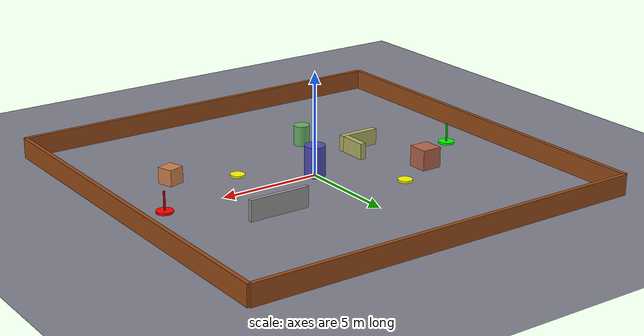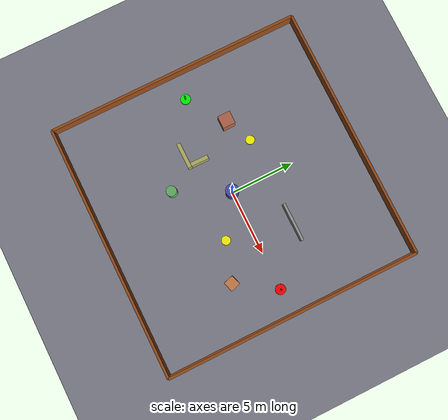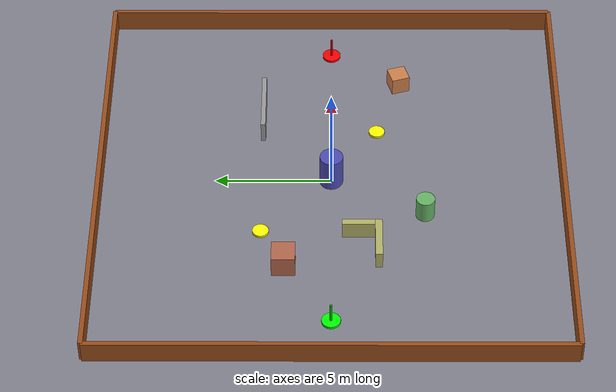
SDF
<?xml version="1.0" ?>
<sdf version="1.8">
  <world name="navigation_testbed">

    <!-- Physics Configuration -->
    <physics name="1ms" type="ignored">
      <max_step_size>0.001</max_step_size>
      <real_time_factor>1.0</real_time_factor>
    </physics>

    <!-- Plugins for ROS 2 Integration -->
    <plugin
      filename="gz-sim-physics-system"
      name="gz::sim::systems::Physics">
    </plugin>
    <plugin
      filename="gz-sim-user-commands-system"
      name="gz::sim::systems::UserCommands">
    </plugin>
    <plugin
      filename="gz-sim-scene-broadcaster-system"
      name="gz::sim::systems::SceneBroadcaster">
    </plugin>
    <plugin
      filename="gz-sim-sensors-system"
      name="gz::sim::systems::Sensors">
      <render_engine>ogre2</render_engine>
    </plugin>
    <plugin
      filename="gz-sim-contact-system"
      name="gz::sim::systems::Contact">
    </plugin>

    <!-- Lighting -->
    <light type="directional" name="sun">
      <cast_shadows>true</cast_shadows>
      <pose>0 0 10 0 0 0</pose>
      <diffuse>0.8 0.8 0.8 1</diffuse>
      <specular>0.2 0.2 0.2 1</specular>
      <direction>-0.5 0.1 -0.9</direction>
    </light>

    <light type="point" name="fill_light">
      <pose>-5 5 8 0 0 0</pose>
      <diffuse>0.3 0.3 0.3 1</diffuse>
      <specular>0.1 0.1 0.1 1</specular>
      <attenuation>
        <range>30</range>
        <constant>0.5</constant>
        <linear>0.01</linear>
        <quadratic>0.001</quadratic>
      </attenuation>
    </light>

    <!-- Ground Plane -->
    <model name="ground_plane">
      <static>true</static>
      <link name="link">
        <collision name="collision">
          <geometry>
            <plane>
              <normal>0 0 1</normal>
              <size>30 30</size>
            </plane>
          </geometry>
          <surface>
            <friction>
              <ode>
                <mu>0.8</mu>
                <mu2>0.8</mu2>
              </ode>
            </friction>
          </surface>
        </collision>
        <visual name="visual">
          <geometry>
            <plane>
              <normal>0 0 1</normal>
              <size>30 30</size>
            </plane>
          </geometry>
          <material>
            <ambient>0.3 0.3 0.35 1</ambient>
            <diffuse>0.5 0.5 0.55 1</diffuse>
          </material>
        </visual>
      </link>
    </model>

    <!-- ============== WAYPOINT MARKERS ============== -->

    <!-- Start Position Marker (Green) -->
    <model name="marker_start">
      <static>true</static>
      <pose>-8 0 0.05 0 0 0</pose>
      <link name="link">
        <visual name="visual">
          <geometry>
            <cylinder>
              <radius>0.4</radius>
              <length>0.1</length>
            </cylinder>
          </geometry>
          <material>
            <ambient>0.0 0.8 0.0 1</ambient>
            <diffuse>0.0 1.0 0.0 1</diffuse>
            <emissive>0.0 0.3 0.0 1</emissive>
          </material>
        </visual>
      </link>
    </model>

    <!-- Start Label -->
    <model name="marker_start_pole">
      <static>true</static>
      <pose>-8 0 0.5 0 0 0</pose>
      <link name="link">
        <visual name="visual">
          <geometry>
            <cylinder>
              <radius>0.05</radius>
              <length>1.0</length>
            </cylinder>
          </geometry>
          <material>
            <ambient>0.0 0.5 0.0 1</ambient>
            <diffuse>0.0 0.7 0.0 1</diffuse>
          </material>
        </visual>
      </link>
    </model>

    <!-- Waypoint 1 Marker (Yellow) -->
    <model name="marker_waypoint1">
      <static>true</static>
      <pose>-3 3 0.05 0 0 0</pose>
      <link name="link">
        <visual name="visual">
          <geometry>
            <cylinder>
              <radius>0.35</radius>
              <length>0.1</length>
            </cylinder>
          </geometry>
          <material>
            <ambient>0.8 0.8 0.0 1</ambient>
            <diffuse>1.0 1.0 0.0 1</diffuse>
            <emissive>0.3 0.3 0.0 1</emissive>
          </material>
        </visual>
      </link>
    </model>

    <!-- Waypoint 2 Marker (Yellow) -->
    <model name="marker_waypoint2">
      <static>true</static>
      <pose>3 -2 0.05 0 0 0</pose>
      <link name="link">
        <visual name="visual">
          <geometry>
            <cylinder>
              <radius>0.35</radius>
              <length>0.1</length>
            </cylinder>
          </geometry>
          <material>
            <ambient>0.8 0.8 0.0 1</ambient>
            <diffuse>1.0 1.0 0.0 1</diffuse>
            <emissive>0.3 0.3 0.0 1</emissive>
          </material>
        </visual>
      </link>
    </model>

    <!-- Goal Position Marker (Red) -->
    <model name="marker_goal">
      <static>true</static>
      <pose>8 0 0.05 0 0 0</pose>
      <link name="link">
        <visual name="visual">
          <geometry>
            <cylinder>
              <radius>0.4</radius>
              <length>0.1</length>
            </cylinder>
          </geometry>
          <material>
            <ambient>0.8 0.0 0.0 1</ambient>
            <diffuse>1.0 0.0 0.0 1</diffuse>
            <emissive>0.3 0.0 0.0 1</emissive>
          </material>
        </visual>
      </link>
    </model>

    <!-- Goal Label Pole -->
    <model name="marker_goal_pole">
      <static>true</static>
      <pose>8 0 0.5 0 0 0</pose>
      <link name="link">
        <visual name="visual">
          <geometry>
            <cylinder>
              <radius>0.05</radius>
              <length>1.0</length>
            </cylinder>
          </geometry>
          <material>
            <ambient>0.5 0.0 0.0 1</ambient>
            <diffuse>0.7 0.0 0.0 1</diffuse>
          </material>
        </visual>
      </link>
    </model>

    <!-- ============== STATIC OBSTACLES ============== -->

    <!-- Obstacle 1: Large Box -->
    <model name="obstacle_box_1">
      <static>true</static>
      <pose>-5 2 0.5 0 0 0</pose>
      <link name="link">
        <collision name="collision">
          <geometry>
            <box><size>1.0 1.0 1.0</size></box>
          </geometry>
          <surface>
            <friction>
              <ode>
                <mu>1.0</mu>
                <mu2>1.0</mu2>
              </ode>
            </friction>
          </surface>
        </collision>
        <visual name="visual">
          <geometry>
            <box><size>1.0 1.0 1.0</size></box>
          </geometry>
          <material>
            <ambient>0.5 0.3 0.2 1</ambient>
            <diffuse>0.7 0.4 0.3 1</diffuse>
          </material>
        </visual>
      </link>
    </model>

    <!-- Obstacle 2: Central Cylinder -->
    <model name="obstacle_cylinder_1">
      <static>true</static>
      <pose>0 0 0.75 0 0 0</pose>
      <link name="link">
        <collision name="collision">
          <geometry>
            <cylinder>
              <radius>0.5</radius>
              <length>1.5</length>
            </cylinder>
          </geometry>
        </collision>
        <visual name="visual">
          <geometry>
            <cylinder>
              <radius>0.5</radius>
              <length>1.5</length>
            </cylinder>
          </geometry>
          <material>
            <ambient>0.2 0.2 0.5 1</ambient>
            <diffuse>0.3 0.3 0.7 1</diffuse>
          </material>
        </visual>
      </link>
    </model>

    <!-- Obstacle 3: Wall Section -->
    <model name="obstacle_wall">
      <static>true</static>
      <pose>4 3 0.5 0 0 0</pose>
      <link name="link">
        <collision name="collision">
          <geometry>
            <box><size>3.0 0.2 1.0</size></box>
          </geometry>
        </collision>
        <visual name="visual">
          <geometry>
            <box><size>3.0 0.2 1.0</size></box>
          </geometry>
          <material>
            <ambient>0.4 0.4 0.4 1</ambient>
            <diffuse>0.6 0.6 0.6 1</diffuse>
          </material>
        </visual>
      </link>
    </model>

    <!-- Obstacle 4: Small Box -->
    <model name="obstacle_box_2">
      <static>true</static>
      <pose>6 -3 0.4 0 0 0.3</pose>
      <link name="link">
        <collision name="collision">
          <geometry>
            <box><size>0.8 0.8 0.8</size></box>
          </geometry>
        </collision>
        <visual name="visual">
          <geometry>
            <box><size>0.8 0.8 0.8</size></box>
          </geometry>
          <material>
            <ambient>0.6 0.4 0.2 1</ambient>
            <diffuse>0.8 0.5 0.3 1</diffuse>
          </material>
        </visual>
      </link>
    </model>

    <!-- Obstacle 5: Cylinder -->
    <model name="obstacle_cylinder_2">
      <static>true</static>
      <pose>-2 -4 0.5 0 0 0</pose>
      <link name="link">
        <collision name="collision">
          <geometry>
            <cylinder>
              <radius>0.4</radius>
              <length>1.0</length>
            </cylinder>
          </geometry>
        </collision>
        <visual name="visual">
          <geometry>
            <cylinder>
              <radius>0.4</radius>
              <length>1.0</length>
            </cylinder>
          </geometry>
          <material>
            <ambient>0.3 0.5 0.3 1</ambient>
            <diffuse>0.4 0.7 0.4 1</diffuse>
          </material>
        </visual>
      </link>
    </model>

    <!-- Obstacle 6: L-shaped barrier (two boxes) -->
    <model name="obstacle_l_shape_1">
      <static>true</static>
      <pose>-4 -2 0.4 0 0 0</pose>
      <link name="link">
        <collision name="collision">
          <geometry>
            <box><size>2.0 0.3 0.8</size></box>
          </geometry>
        </collision>
        <visual name="visual">
          <geometry>
            <box><size>2.0 0.3 0.8</size></box>
          </geometry>
          <material>
            <ambient>0.5 0.5 0.3 1</ambient>
            <diffuse>0.7 0.7 0.4 1</diffuse>
          </material>
        </visual>
      </link>
    </model>

    <model name="obstacle_l_shape_2">
      <static>true</static>
      <pose>-3.15 -1.15 0.4 0 0 1.5708</pose>
      <link name="link">
        <collision name="collision">
          <geometry>
            <box><size>1.4 0.3 0.8</size></box>
          </geometry>
        </collision>
        <visual name="visual">
          <geometry>
            <box><size>1.4 0.3 0.8</size></box>
          </geometry>
          <material>
            <ambient>0.5 0.5 0.3 1</ambient>
            <diffuse>0.7 0.7 0.4 1</diffuse>
          </material>
        </visual>
      </link>
    </model>

    <!-- ============== BOUNDARY WALLS ============== -->

    <model name="boundary_north">
      <static>true</static>
      <pose>0 10 0.5 0 0 0</pose>
      <link name="link">
        <collision name="collision">
          <geometry>
            <box><size>20 0.2 1.0</size></box>
          </geometry>
        </collision>
        <visual name="visual">
          <geometry>
            <box><size>20 0.2 1.0</size></box>
          </geometry>
          <material>
            <ambient>0.4 0.2 0.1 1</ambient>
            <diffuse>0.6 0.3 0.1 1</diffuse>
          </material>
        </visual>
      </link>
    </model>

    <model name="boundary_south">
      <static>true</static>
      <pose>0 -10 0.5 0 0 0</pose>
      <link name="link">
        <collision name="collision">
          <geometry>
            <box><size>20 0.2 1.0</size></box>
          </geometry>
        </collision>
        <visual name="visual">
          <geometry>
            <box><size>20 0.2 1.0</size></box>
          </geometry>
          <material>
            <ambient>0.4 0.2 0.1 1</ambient>
            <diffuse>0.6 0.3 0.1 1</diffuse>
          </material>
        </visual>
      </link>
    </model>

    <model name="boundary_east">
      <static>true</static>
      <pose>10 0 0.5 0 0 1.5708</pose>
      <link name="link">
        <collision name="collision">
          <geometry>
            <box><size>20 0.2 1.0</size></box>
          </geometry>
        </collision>
        <visual name="visual">
          <geometry>
            <box><size>20 0.2 1.0</size></box>
          </geometry>
          <material>
            <ambient>0.4 0.2 0.1 1</ambient>
            <diffuse>0.6 0.3 0.1 1</diffuse>
          </material>
        </visual>
      </link>
    </model>

    <model name="boundary_west">
      <static>true</static>
      <pose>-10 0 0.5 0 0 1.5708</pose>
      <link name="link">
        <collision name="collision">
          <geometry>
            <box><size>20 0.2 1.0</size></box>
          </geometry>
        </collision>
        <visual name="visual">
          <geometry>
            <box><size>20 0.2 1.0</size></box>
          </geometry>
          <material>
            <ambient>0.4 0.2 0.1 1</ambient>
            <diffuse>0.6 0.3 0.1 1</diffuse>
          </material>
        </visual>
      </link>
    </model>

  </world>
</sdf>
